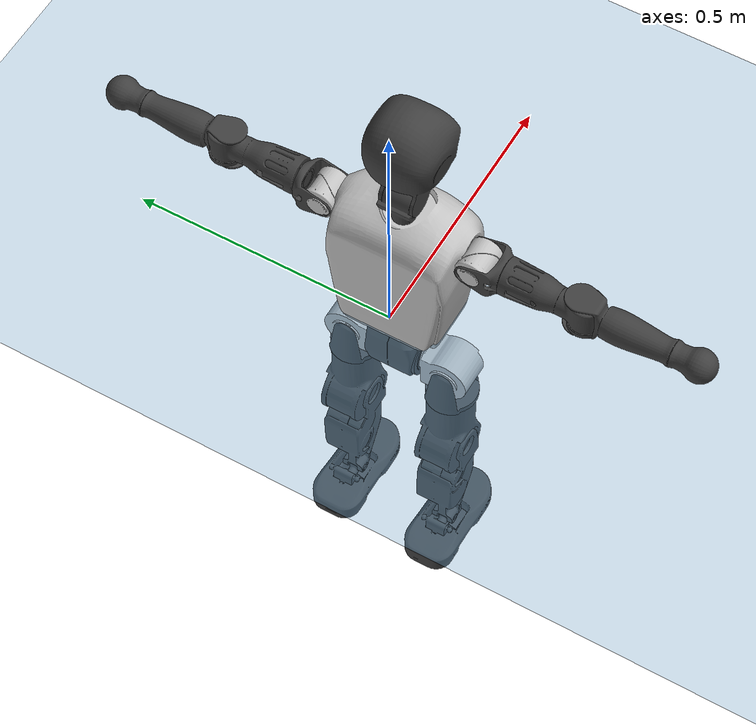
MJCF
<mujoco model="T1">
  <compiler angle="radian" assetdir="assets" balanceinertia="true" inertiafromgeom="false"/>

  <option timestep="0.005" density="1.2" viscosity="2e-05"/>

  <size nkey="1"/>

  <visual>
    <quality shadowsize="8192"/>
    <map shadowclip="0.5"/>
  </visual>

  <default>
    <default class="/">
      <joint armature="0.01" damping="0.01" frictionloss="0.1"/>
      <geom contype="0" conaffinity="0" group="1" solref="-1000 -80"/>
      <site size="0.01 0.005 0.005" group="5"/>
      <general forcelimited="true" biastype="affine" gainprm="25" biasprm="0 -25 -0.6"/>
      <default class="t1">
        <geom rgba="0.25 0.25 0.25 1"/>
        <default class="visual">
          <geom type="mesh" group="2"/>
        </default>
        <default class="collision">
          <geom group="3"/>
        </default>
        <default class="foot">
          <geom size="0.1115 0.05 0.015" type="box" condim="6" group="4" priority="1" solimp="0.015 1 0.015"/>
        </default>
        <default class="reward_collision_sphere">
          <geom group="5" rgba="1 0 0 1"/>
        </default>
      </default>
    </default>
  </default>

  <asset>
    <texture type="skybox" colorspace="auto" name="//unnamed_texture_0" builtin="gradient" rgb1="0.95 0.95 0.95" rgb2="0.95 0.95 0.95" width="100" height="600"/>
    <texture type="2d" colorspace="auto" name="texplane" builtin="checker" rgb1="0.345 0.575 0.748" rgb2="0.345 0.575 0.748" markrgb="1 1 1" width="512" height="512"/>
    <material name="MatPlane" class="/" texture="texplane" texuniform="true" texrepeat="2 2" specular="0.9"/>
    <mesh name="Trunk" class="/" file="Trunk.stl"/>
    <mesh name="H1" class="/" file="H1.stl"/>
    <mesh name="H2" class="/" file="H2.stl"/>
    <mesh name="AL1" class="/" file="AL1.stl"/>
    <mesh name="AL2" class="/" file="AL2.stl"/>
    <mesh name="AL3" class="/" file="AL3.stl"/>
    <mesh name="left_hand_link" class="/" file="left_hand_link.stl"/>
    <mesh name="AR1" class="/" file="AR1.stl"/>
    <mesh name="AR2" class="/" file="AR2.stl"/>
    <mesh name="AR3" class="/" file="AR3.stl"/>
    <mesh name="right_hand_link" class="/" file="right_hand_link.stl"/>
    <mesh name="Waist" class="/" file="Waist.stl"/>
    <mesh name="Hip_Pitch_Left" class="/" file="Hip_Pitch_Left.stl"/>
    <mesh name="Hip_Roll_Left" class="/" file="Hip_Roll_Left.stl"/>
    <mesh name="Hip_Yaw_Left" class="/" file="Hip_Yaw_Left.stl"/>
    <mesh name="Shank_Left" class="/" file="Shank_Left.stl"/>
    <mesh name="Ankle_Cross_Left" class="/" file="Ankle_Cross_Left.stl"/>
    <mesh name="left_foot_link" class="/" file="left_foot_link.stl"/>
    <mesh name="Hip_Pitch_Right" class="/" file="Hip_Pitch_Right.stl"/>
    <mesh name="Hip_Roll_Right" class="/" file="Hip_Roll_Right.stl"/>
    <mesh name="Hip_Yaw_Right" class="/" file="Hip_Yaw_Right.stl"/>
    <mesh name="Shank_Right" class="/" file="Shank_Right.stl"/>
    <mesh name="Ankle_Cross_Right" class="/" file="Ankle_Cross_Right.stl"/>
    <mesh name="right_foot_link" class="/" file="right_foot_link.stl"/>
  </asset>

  <worldbody>
    <geom name="floor" class="/" size="100 100 0.125" type="plane" group="0" material="MatPlane"/>
    <light name="toplight_shadow" class="/" pos="0 0 5" dir="0.0990148 0.0990148 -0.990148" type="directional" ambient="0.04 0.04 0.04" diffuse="0.55 0.55 0.55" specular="0.12 0.12 0.12"/>
    <light name="toplight_fill" class="/" pos="0 0 5" dir="0.0990148 0.0990148 -0.990148" type="directional" castshadow="false" ambient="0.04 0.04 0.04" diffuse="0.3 0.3 0.3" specular="0.08 0.08 0.08"/>
    <body name="trunk" childclass="t1" pos="-0.00108056 -0.00279127 0.00190996" quat="0.999999 0.000633279 -0.000720616 0.00048491">
      <inertial pos="0.0398072 -0.00127874 0.106684" quat="0.999974 -0.00251507 -0.00589055 -0.00316304" mass="7.95431" diaginertia="0.0186479 0.0556909 0.0566924"/>
      <joint name="//unnamed_joint_0" type="free" armature="0" damping="0" frictionloss="0"/>
      <geom name="//unnamed_geom_1" class="visual" rgba="0.76 0.76 0.76 1" mesh="Trunk"/>
      <geom name="//unnamed_geom_2" class="collision" size="0.0664779 0.0886372 0.132956" pos="0.043615 0 0.120239" type="box"/>
      <geom name="//unnamed_geom_3" class="reward_collision_sphere" size="0.101933" pos="0.043615 0 0.100199"/>
      <geom name="//unnamed_geom_4" class="reward_collision_sphere" size="0.0132956" pos="0.043615 0.0790675 0"/>
      <geom name="//unnamed_geom_5" class="reward_collision_sphere" size="0.0132956" pos="0.043615 -0.0790675 0"/>
      <geom name="//unnamed_geom_6" class="reward_collision_sphere" size="0.0132956" pos="0.043615 0.099532 0.180359"/>
      <geom name="//unnamed_geom_7" class="reward_collision_sphere" size="0.0132956" pos="0.043615 -0.099532 0.180359"/>
      <site name="imu" pos="-0.0118887 -0.0136885 -1.31829e-06" size="0.00886372"/>
      <camera name="track" pos="0 -1.86041 0" quat="0.707107 0.707107 0 0" mode="trackcom"/>
      <camera name="ego_camera" pos="0.0886839 0 0.420838" quat="-0.5 -0.5 0.5 0.5"/>
      <body name="H1" pos="0.0455063 0.000961766 0.244335" quat="1 -0.00024581 -0.000360373 0.000732735">
        <inertial pos="0.000362389 -0.00149903 0.0597328" quat="0.764715 -0.0025323 0.00112387 0.644363" mass="0.308595" diaginertia="4.79942e-05 0.000159377 0.000146116"/>
        <joint name="AAHead_yaw" pos="0 0 0" axis="0.0127779 -0.00332571 0.999913" range="-1.61952 1.548" armature="0.0097861" damping="0.00733902" frictionloss="0.0769938"/>
        <geom name="//unnamed_geom_8" class="visual" mesh="H1"/>
        <body name="H2" pos="0.00225303 0.000947912 0.0626888" quat="1 0.000430146 -0.000202422 2.17892e-06">
          <inertial pos="0.00470809 -0.00149685 0.0985673" quat="0.988429 0.103177 -0.0763668 -0.0808098" mass="0.423801" diaginertia="0.000397567 0.00125932 0.00166966"/>
          <joint name="Head_pitch" pos="0 0 0" axis="0.0137521 -0.999899 0.00360487" range="-1.20094 0.384167" armature="0.00845925" damping="0.011372" frictionloss="0.0851704"/>
          <geom name="//unnamed_geom_9" class="visual" mesh="H2"/>
          <geom name="//unnamed_geom_10" class="collision" size="0.0709098" pos="0.00726917 0 0.110219"/>
          <geom name="//unnamed_geom_11" class="reward_collision_sphere" size="0.0797735" pos="0.0145383 0 0.100199"/>
        </body>
      </body>
      <body name="AL1" pos="0.0421941 0.0983711 0.218651" quat="1 2.7603e-06 0.000435628 3.02956e-05">
        <inertial pos="-0.00151503 0.0413783 -0.00244477" quat="0.508012 0.485368 -0.503609 0.502712" mass="0.378446" diaginertia="0.000283234 0.000931059 0.000306584"/>
        <joint name="Left_Shoulder_Pitch" pos="0 0 0" axis="-0.0142361 0.999897 0.00193467" stiffness="0.00771629" range="-3.30706 1.20105" armature="0.00902648" damping="0.0151624" frictionloss="0.0838798"/>
        <geom name="//unnamed_geom_12" class="visual" rgba="0.76 0.76 0.76 1" mesh="AL1"/>
        <body name="AL2" pos="0.0020196 0.0422618 -0.00280453" quat="1 -0.000410869 -0.000446504 0.000503646">
          <inertial pos="0.00191585 0.0331261 -0.000447484" quat="0.487879 0.511613 -0.488357 0.5116" mass="0.109263" diaginertia="8.16811e-05 0.000233276 0.000175378"/>
          <joint name="Left_Shoulder_Roll" pos="0 0 0" axis="-0.999903 0.00830854 0.0112149" range="-1.51777 1.74247" armature="0.00838939" damping="0" frictionloss="0.100656"/>
          <geom name="//unnamed_geom_13" class="visual" mesh="AL2"/>
          <body name="AL3" pos="0.0032746 0.0587756 0.00210013" quat="0.999999 0.000166529 -8.49254e-05 0.00114843">
            <inertial pos="-0.000449976 0.0765569 -0.000849846" quat="0.705696 0.708439 0.00800151 0.00653214" mass="0.711841" diaginertia="0.00256713 0.00901746 0.000595431"/>
            <joint name="Left_Elbow_Pitch" pos="0 0 0" axis="-0.00769623 -0.999901 -0.0117958" range="-2.23119 2.22031" armature="0.0101008" damping="0" frictionloss="0.100752"/>
            <geom name="//unnamed_geom_14" class="visual" mesh="AL3"/>
            <geom name="//unnamed_geom_15" class="collision" size="0.0265912 0.0664779" pos="0 0.0465103 0" quat="0.707105 0.707108 0 0" type="cylinder"/>
            <geom name="//unnamed_geom_16" class="reward_collision_sphere" size="0.0319094"/>
            <body name="left_hand_link" pos="0.00238274 0.137244 -0.00146689" quat="0.999999 -0.000646121 -0.00081472 -0.000713032">
              <inertial pos="3.95505e-06 0.102769 -0.00228689" quat="0.705472 0.708727 -0.00235541 0.00313926" mass="0.234203" diaginertia="0.0016921 0.00575291 0.000215852"/>
              <joint name="Left_Elbow_Yaw" pos="0 0 0" axis="-0.013871 0.00889446 0.999864" stiffness="0.00960297" range="-2.44301 0.00933346" armature="0.00892641" damping="0.0118734" frictionloss="0.0981236"/>
              <geom name="//unnamed_geom_17" class="visual" mesh="left_hand_link"/>
              <geom name="//unnamed_geom_18" class="collision" size="0.0265912 0.0775576" pos="0 0.120927 0" quat="0.707105 0.707108 0 0" type="cylinder"/>
              <geom name="//unnamed_geom_19" class="reward_collision_sphere" size="0.0443186"/>
              <geom name="//unnamed_geom_20" class="reward_collision_sphere" size="0.031023" pos="0 0.102323 0"/>
              <geom name="//unnamed_geom_21" class="reward_collision_sphere" size="0.031023" pos="0 0.199994 0"/>
            </body>
          </body>
        </body>
      </body>
      <body name="AR1" pos="0.0413339 -0.09706 0.219904" quat="1 -0.000552071 0.000175204 -0.000564386">
        <inertial pos="-0.000752936 -0.0446366 0.00258073" quat="0.504233 0.495557 -0.504166 0.495973" mass="0.36949" diaginertia="0.000265438 0.00090449 0.000302985"/>
        <joint name="Right_Shoulder_Pitch" pos="0 0 0" axis="0.00133761 -0.999999 -0.000625657" stiffness="0.00011707" range="-1.22413 3.30626" armature="0.00783909" damping="0.00783162" frictionloss="0.0852844"/>
        <geom name="//unnamed_geom_22" class="visual" rgba="0.76 0.76 0.76 1" mesh="AR1"/>
        <body name="AR2" pos="0.000674574 -0.0398493 -0.00109048" quat="1 0.000139359 0.000102855 -5.18542e-05">
          <inertial pos="0.00333523 -0.0353151 -0.00236478" quat="0.518223 0.484328 -0.505635 0.491126" mass="0.113783" diaginertia="7.86465e-05 0.000232429 0.000171844"/>
          <joint name="Right_Shoulder_Roll" pos="0 0 0" axis="-0.99998 0.00541635 0.00336294" stiffness="0.0105276" range="-1.7384 1.6262" armature="0.00866903" damping="0" frictionloss="0.0871767"/>
          <geom name="//unnamed_geom_23" class="visual" mesh="AR2"/>
          <body name="AR3" pos="0.00231617 -0.0557048 -0.0029263" quat="1 0.000142925 0.000210553 0.000569705">
            <inertial pos="0.00032948 -0.0814084 0.00101196" quat="0.708022 0.706188 0.00159079 0.00044638" mass="0.709447" diaginertia="0.00262178 0.0092662 0.000646946"/>
            <joint name="Right_Elbow_Pitch" pos="0 0 0" axis="0.000405134 0.999995 0.00297766" range="-2.26746 2.27702" armature="0.0100208" damping="0.00730572" frictionloss="0.0766959"/>
            <geom name="//unnamed_geom_24" class="visual" mesh="AR3"/>
            <geom name="//unnamed_geom_25" class="collision" size="0.0265912 0.0664779" pos="0 -0.0465103 0" quat="0.707105 0.707108 0 0" type="cylinder"/>
            <geom name="//unnamed_geom_26" class="reward_collision_sphere" size="0.0319094"/>
            <body name="right_hand_link" pos="-4.58553e-05 -0.137664 0.000565699" quat="0.999999 -0.00103451 -0.000458194 0.000367952">
              <inertial pos="0.000163965 -0.101233 -0.00161957" quat="0.697823 0.71627 -0.000359176 3.76053e-05" mass="0.232376" diaginertia="0.00159441 0.00566528 0.000222299"/>
              <joint name="Right_Elbow_Yaw" pos="0 0 0" axis="-0.00467258 0.00503249 0.999976" range="-0.0540083 2.48559" armature="0.00915049" damping="0.00655078" frictionloss="0.0880626"/>
              <geom name="//unnamed_geom_27" class="visual" mesh="right_hand_link"/>
              <geom name="//unnamed_geom_28" class="collision" size="0.0265912 0.0775576" pos="0 -0.120927 0" quat="0.707105 0.707108 0 0" type="cylinder"/>
              <geom name="//unnamed_geom_29" class="reward_collision_sphere" size="0.0443186"/>
              <geom name="//unnamed_geom_30" class="reward_collision_sphere" size="0.031023" pos="0 -0.102323 0"/>
              <geom name="//unnamed_geom_31" class="reward_collision_sphere" size="0.031023" pos="0 -0.199994 0"/>
            </body>
          </body>
        </body>
      </body>
      <body name="Waist" pos="0.0476956 -9.38519e-05 -0.116558" quat="1 0.00061383 0.000117068 -8.77986e-05">
        <inertial pos="0.000611787 -9.0915e-05 0.00931548" quat="0.984429 0.00835044 -0.175524 0.0046434" mass="1.74667" diaginertia="0.00105271 0.00373413 0.00478456"/>
        <joint name="Waist" pos="0 0 0" axis="-0.00966325 0.0124451 0.999876" range="-1.5714 1.58251" armature="0.00922302" damping="0.0236748" frictionloss="0.0762545"/>
        <geom name="//unnamed_geom_32" class="visual" mesh="Waist"/>
        <body name="Hip_Pitch_Left" pos="0.00374925 0.100541 -0.00126819" quat="1 0.000252045 -0.000320687 0.000376537">
          <inertial pos="0.00290408 -0.00552556 -0.0209419" quat="0.973576 0.22712 0.0235903 -0.0031504" mass="0.736718" diaginertia="0.000366241 0.0010274 0.00128548"/>
          <joint name="Left_Hip_Pitch" pos="0 0 0" axis="0.000374918 0.999955 -0.00951005" range="-1.80698 1.62591" armature="0.00925589" damping="0" frictionloss="0.093033"/>
          <geom name="//unnamed_geom_33" class="visual" rgba="0.76 0.76 0.76 1" mesh="Hip_Pitch_Left"/>
          <body name="Hip_Roll_Left" pos="0.00224843 -0.000525196 -0.017896" quat="1 2.08952e-05 2.92316e-05 9.93679e-05">
            <inertial pos="-0.00139096 0.00278041 -0.0542596" quat="0.700327 0.000985088 -0.000140011 0.713821" mass="0.262207" diaginertia="0.000355628 0.000995885 0.000508905"/>
            <joint name="Left_Hip_Roll" pos="0 0 0" axis="-0.999996 0.0024565 0.00114518" range="-1.57851 0.228742" armature="0.00867276" damping="0.00813749" frictionloss="0.0769642"/>
            <geom name="//unnamed_geom_34" class="visual" mesh="Hip_Roll_Left"/>
            <geom name="//unnamed_geom_35" class="reward_collision_sphere" size="0.0487505"/>
            <body name="Hip_Yaw_Left" pos="-0.000687489 0.00191165 -0.0801474" quat="1 -5.91093e-05 -2.58589e-05 0.000159656">
              <inertial pos="-0.0050002 -0.000847058 -0.0885441" quat="0.689718 -0.034222 -0.0397136 0.722177" mass="1.42498" diaginertia="0.00513029 0.0170263 0.00254107"/>
              <joint name="Left_Hip_Yaw" pos="0 0 0" axis="-0.00916492 0.0088001 -0.999919" range="-0.973013 0.952081" armature="0.0091612" damping="0.0109139" frictionloss="0.0906478"/>
              <geom name="//unnamed_geom_36" class="visual" mesh="Hip_Yaw_Left"/>
              <geom name="//unnamed_geom_37" class="collision" size="0.0443186 0.0709098" type="cylinder"/>
              <body name="Shank_Left" pos="-0.00615971 0.00209126 -0.137693" quat="1 -0.000708413 -3.87406e-05 0.000178777">
                <inertial pos="-0.00514197 -0.00223479 -0.124708" quat="0.997611 0.00588167 -0.0263058 0.0636025" mass="1.21064" diaginertia="0.00726999 0.024026 0.00193948"/>
                <joint name="Left_Knee_Pitch" pos="0 0 0" axis="-0.00342029 0.99998 0.00525143" range="0.0353907 2.33731" armature="0.00902203" damping="0.0210643" frictionloss="0.0970332"/>
                <geom name="//unnamed_geom_38" class="visual" mesh="Shank_Left"/>
                <geom name="//unnamed_geom_39" class="collision" size="0.0443186 0.0664779" pos="0 0 -0.120239" type="cylinder"/>
                <geom name="//unnamed_geom_40" class="reward_collision_sphere" size="0.0576142"/>
                <body name="Ankle_Cross_Left" pos="0.000426374 -0.00119626 -0.283313" quat="1 -0.000167279 -8.96252e-05 -0.000238262">
                  <inertial pos="-0.00219589 0.000438291 -0.00587066" quat="0.443918 0.548332 0.554531 0.44132" mass="0.0479669" diaginertia="5.93763e-06 1.6919e-05 1.13145e-05"/>
                  <joint name="Left_Ankle_Pitch" pos="0 0 0" axis="-0.00550324 0.999904 -0.0127492" range="-0.885478 0.358035" armature="0.00883252" damping="0.00492453" frictionloss="0.0816367"/>
                  <geom name="//unnamed_geom_41" class="visual" mesh="Ankle_Cross_Left"/>
                  <body name="left_foot_link" pos="0.00102266 0.00174716 -0.0119128" quat="0.999999 -0.0011116 -0.000462252 -0.000155933">
                    <inertial pos="0.00261024 0.000620094 -0.0100353" quat="0.00648245 0.619388 0.0122934 0.784962" mass="0.490969" diaginertia="0.000559959 0.00169542 0.00217354"/>
                    <joint name="Left_Ankle_Roll" pos="0 0 0" axis="-1 -0.000431731 0.000718299" range="-0.453883 0.401522" armature="0.0089273" damping="0" frictionloss="0.0918817"/>
                    <geom name="//unnamed_geom_42" class="visual" mesh="left_foot_link"/>
                    <geom name="left_foot" class="foot" size="0.109458 0.0404117 0.0123243" pos="0.00726917 0 -0.0150299"/>
                    <geom name="//unnamed_geom_44" class="reward_collision_sphere" size="0.0460914" pos="0.00726917 0 -0.0150299"/>
                    <geom name="//unnamed_geom_45" class="reward_collision_sphere" size="0.0265912" pos="0.0690571 -0.0213947 -0.0150299"/>
                    <geom name="//unnamed_geom_46" class="reward_collision_sphere" size="0.0265912" pos="-0.0508842 -0.0213947 -0.0150299"/>
                    <site name="left_foot" class="foot" pos="0.00726917 0 -0.0150299" size="0.00886372"/>
                  </body>
                </body>
              </body>
            </body>
          </body>
        </body>
        <body name="Hip_Pitch_Right" pos="-0.00344917 -0.0997433 0.000355461" quat="0.999999 4.78236e-05 0.0015662 -0.000284014">
          <inertial pos="-0.00178015 0.00708261 -0.0151218" quat="0.973111 -0.229922 0.0130651 -0.00441582" mass="0.729484" diaginertia="0.000372978 0.00104377 0.00131654"/>
          <joint name="Right_Hip_Pitch" pos="0 0 0" axis="2.18427e-05 -1 2.83331e-05" range="-1.56843 1.81892" armature="0.00917435" damping="0" frictionloss="0.100472"/>
          <geom name="//unnamed_geom_47" class="visual" rgba="0.76 0.76 0.76 1" mesh="Hip_Pitch_Right"/>
          <body name="Hip_Roll_Right" pos="0.0024435 0.000773899 -0.0213529" quat="1 -2.93749e-05 3.6648e-05 7.64783e-05">
            <inertial pos="-0.00175651 -0.00218862 -0.0565249" quat="0.705092 0.00174901 -0.00965589 0.709048" mass="0.27743" diaginertia="0.000349802 0.00105773 0.00051312"/>
            <joint name="Right_Hip_Roll" pos="0 0 0" axis="-0.999982 -0.000321429 -0.00601775" range="-0.246159 1.59016" armature="0.00976744" damping="0.00481528" frictionloss="0.0804295"/>
            <geom name="//unnamed_geom_48" class="visual" mesh="Hip_Roll_Right"/>
            <geom name="//unnamed_geom_49" class="reward_collision_sphere" size="0.0487505"/>
            <body name="Hip_Yaw_Right" pos="-0.00169887 0.00091598 -0.0822642" quat="1 2.26115e-06 -1.93384e-05 7.48008e-06">
              <inertial pos="-0.00488627 -0.00320448 -0.0870614" quat="0.716116 -0.0300692 -0.0371589 0.696343" mass="1.55826" diaginertia="0.00520214 0.018771 0.00261075"/>
              <joint name="Right_Hip_Yaw" pos="0 0 0" axis="0.00156135 0.00327469 -0.999993" stiffness="0.00961886" range="-0.977489 1.00468" armature="0.00779933" damping="0" frictionloss="0.0926342"/>
              <geom name="//unnamed_geom_50" class="visual" mesh="Hip_Yaw_Right"/>
              <geom name="//unnamed_geom_51" class="collision" size="0.0443186 0.0709098" type="cylinder"/>
              <body name="Shank_Right" pos="-0.00761805 0.000493614 -0.135734" quat="1 -1.29886e-05 -9.98886e-05 2.40241e-05">
                <inertial pos="-0.00186462 0.00163134 -0.122467" quat="0.99912 -0.0138391 -0.022205 -0.0327921" mass="1.2839" diaginertia="0.00752478 0.0248391 0.00199156"/>
                <joint name="Right_Knee_Pitch" pos="0 0 0" axis="-0.00540068 -0.999985 0.000426919" range="-2.34239 -0.00173449" armature="0.00876325" damping="0.00520354" frictionloss="0.0957105"/>
                <geom name="//unnamed_geom_52" class="visual" mesh="Shank_Right"/>
                <geom name="//unnamed_geom_53" class="collision" size="0.0443186 0.0664779" pos="0 0 -0.120239" type="cylinder"/>
                <geom name="//unnamed_geom_54" class="reward_collision_sphere" size="0.0576142"/>
                <body name="Ankle_Cross_Right" pos="0.00265091 -9.59751e-05 -0.280934" quat="1 -4.02019e-05 -6.02083e-05 5.78464e-06">
                  <inertial pos="-0.00233125 0.00228439 -0.0081916" quat="0.437791 0.550602 0.549949 0.450259" mass="0.0490149" diaginertia="6.07627e-06 1.79579e-05 1.11316e-05"/>
                  <joint name="Right_Ankle_Pitch" pos="0 0 0" axis="0.00666544 -0.999934 -0.00940063" range="-0.36074 0.86645" armature="0.00865706" damping="0.0040617" frictionloss="0.0891916"/>
                  <geom name="//unnamed_geom_55" class="visual" mesh="Ankle_Cross_Right"/>
                  <body name="right_foot_link" pos="0.000260303 -0.00393651 -0.00920118" quat="1 3.02451e-05 4.58235e-06 1.51339e-06">
                    <inertial pos="0.00236259 -0.000511778 -0.00668341" quat="-0.0133835 0.618236 -0.000274453 0.785879" mass="0.473563" diaginertia="0.000563129 0.00167618 0.00216764"/>
                    <joint name="Right_Ankle_Roll" pos="0 0 0" axis="-0.999889 -0.0147221 0.00208691" stiffness="0.00117205" range="-0.434672 0.423993" armature="0.00920766" damping="0.00819718" frictionloss="0.077098"/>
                    <geom name="//unnamed_geom_56" class="visual" mesh="right_foot_link"/>
                    <geom name="right_foot" class="foot" size="0.103339 0.0399687 0.0121705" pos="0.00726917 0 -0.0150299"/>
                    <geom name="//unnamed_geom_58" class="reward_collision_sphere" size="0.0354549"/>
                    <geom name="//unnamed_geom_59" class="reward_collision_sphere" size="0.0265912" pos="0.00726917 0 -0.0150299"/>
                    <geom name="//unnamed_geom_60" class="reward_collision_sphere" size="0.0265912" pos="0.0690571 0.0213947 -0.0150299"/>
                    <geom name="//unnamed_geom_61" class="reward_collision_sphere" size="0.0265912" pos="-0.0508842 0.0213947 -0.0150299"/>
                    <site name="right_foot" class="foot" pos="0.00726917 0 -0.0150299" size="0.00886372"/>
                  </body>
                </body>
              </body>
            </body>
          </body>
        </body>
      </body>
    </body>
  </worldbody>

  <contact>
    <pair class="/" geom1="floor" geom2="left_foot" name="//unnamed_contact_0"/>
    <pair class="/" geom1="floor" geom2="right_foot" name="//unnamed_contact_1"/>
  </contact>

  <actuator>
    <general name="AAHead_yaw" class="/" joint="AAHead_yaw" forcerange="-5.5623 5.5623" gainprm="22.231" biasprm="0 -22.231 -0.504847"/>
    <general name="Head_pitch" class="/" joint="Head_pitch" forcerange="-6.37712 6.37712" gainprm="22.231" biasprm="0 -22.231 -0.504847"/>
    <general name="Left_Shoulder_Pitch" class="/" joint="Left_Shoulder_Pitch" forcerange="-16.1161 16.1161" gainprm="22.231" biasprm="0 -22.231 -0.504847"/>
    <general name="Left_Shoulder_Roll" class="/" joint="Left_Shoulder_Roll" forcerange="-16.3049 16.3049" gainprm="22.231" biasprm="0 -22.231 -0.504847"/>
    <general name="Left_Elbow_Pitch" class="/" joint="Left_Elbow_Pitch" forcerange="-17.6642 17.6642" gainprm="22.231" biasprm="0 -22.231 -0.504847"/>
    <general name="Left_Elbow_Yaw" class="/" joint="Left_Elbow_Yaw" forcerange="-17.3889 17.3889" gainprm="22.231" biasprm="0 -22.231 -0.504847"/>
    <general name="Right_Shoulder_Pitch" class="/" joint="Right_Shoulder_Pitch" forcerange="-16.0194 16.0194" gainprm="22.231" biasprm="0 -22.231 -0.504847"/>
    <general name="Right_Shoulder_Roll" class="/" joint="Right_Shoulder_Roll" forcerange="-17.6331 17.6331" gainprm="22.231" biasprm="0 -22.231 -0.504847"/>
    <general name="Right_Elbow_Pitch" class="/" joint="Right_Elbow_Pitch" forcerange="-17.3852 17.3852" gainprm="22.231" biasprm="0 -22.231 -0.504847"/>
    <general name="Right_Elbow_Yaw" class="/" joint="Right_Elbow_Yaw" forcerange="-14.2429 14.2429" gainprm="22.231" biasprm="0 -22.231 -0.504847"/>
    <general name="Waist" class="/" joint="Waist" forcerange="-26.7158 26.7158" gainprm="22.231" biasprm="0 -22.231 -0.504847"/>
    <general name="Left_Hip_Pitch" class="/" joint="Left_Hip_Pitch" forcerange="-43.1125 43.1125" gainprm="22.231" biasprm="0 -22.231 -0.504847"/>
    <general name="Left_Hip_Roll" class="/" joint="Left_Hip_Roll" forcerange="-27.6524 27.6524" gainprm="22.231" biasprm="0 -22.231 -0.504847"/>
    <general name="Left_Hip_Yaw" class="/" joint="Left_Hip_Yaw" forcerange="-26.909 26.909" gainprm="22.231" biasprm="0 -22.231 -0.504847"/>
    <general name="Left_Knee_Pitch" class="/" joint="Left_Knee_Pitch" forcerange="-52.6219 52.6219" gainprm="22.231" biasprm="0 -22.231 -0.504847"/>
    <general name="Left_Ankle_Pitch" class="/" joint="Left_Ankle_Pitch" forcerange="-17.5673 17.5673" gainprm="22.231" biasprm="0 -22.231 -0.504847"/>
    <general name="Left_Ankle_Roll" class="/" joint="Left_Ankle_Roll" forcerange="-13.2617 13.2617" gainprm="22.231" biasprm="0 -22.231 -0.504847"/>
    <general name="Right_Hip_Pitch" class="/" joint="Right_Hip_Pitch" forcerange="-40.584 40.584" gainprm="22.231" biasprm="0 -22.231 -0.504847"/>
    <general name="Right_Hip_Roll" class="/" joint="Right_Hip_Roll" forcerange="-26.3236 26.3236" gainprm="22.231" biasprm="0 -22.231 -0.504847"/>
    <general name="Right_Hip_Yaw" class="/" joint="Right_Hip_Yaw" forcerange="-26.5021 26.5021" gainprm="22.231" biasprm="0 -22.231 -0.504847"/>
    <general name="Right_Knee_Pitch" class="/" joint="Right_Knee_Pitch" forcerange="-49.5838 49.5838" gainprm="22.231" biasprm="0 -22.231 -0.504847"/>
    <general name="Right_Ankle_Pitch" class="/" joint="Right_Ankle_Pitch" forcerange="-15.9177 15.9177" gainprm="22.231" biasprm="0 -22.231 -0.504847"/>
    <general name="Right_Ankle_Roll" class="/" joint="Right_Ankle_Roll" forcerange="-14.4174 14.4174" gainprm="22.231" biasprm="0 -22.231 -0.504847"/>
  </actuator>

  <sensor>
    <gyro site="imu" name="imu_angular_velocity"/>
    <velocimeter site="imu" name="imu_linear_velocity"/>
    <framelinvel objtype="site" objname="left_foot" name="left_foot_global_linear_velocity"/>
    <framelinvel objtype="site" objname="right_foot" name="right_foot_global_linear_velocity"/>
  </sensor>

  <keyframe>
    <key name="home" qpos="0 0 0.6385 1 0 0 0 0 0 0 1.4 0 -0.4 0 -1.4 0 0.4 0 -0.4 0 0 0.8 -0.4 0 0.4 0 0 -0.8 0.4 0"/>
  </keyframe>
</mujoco>
